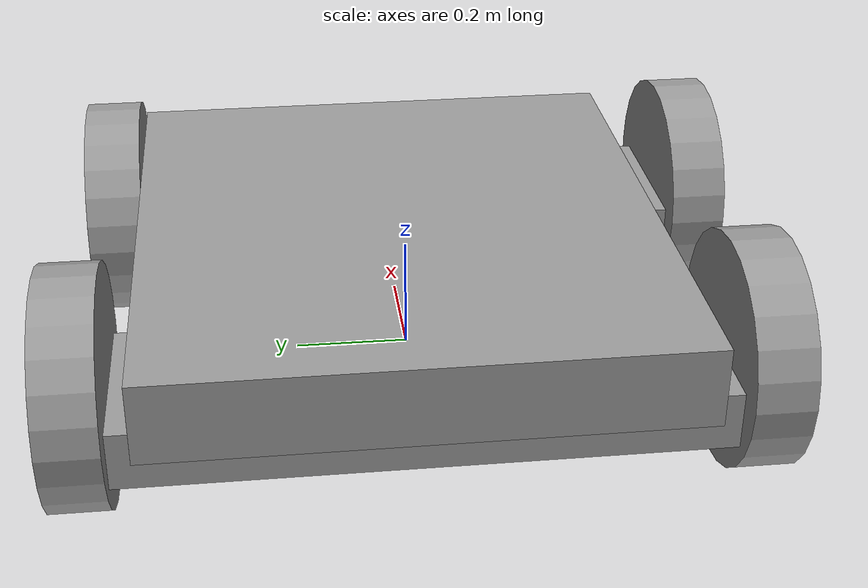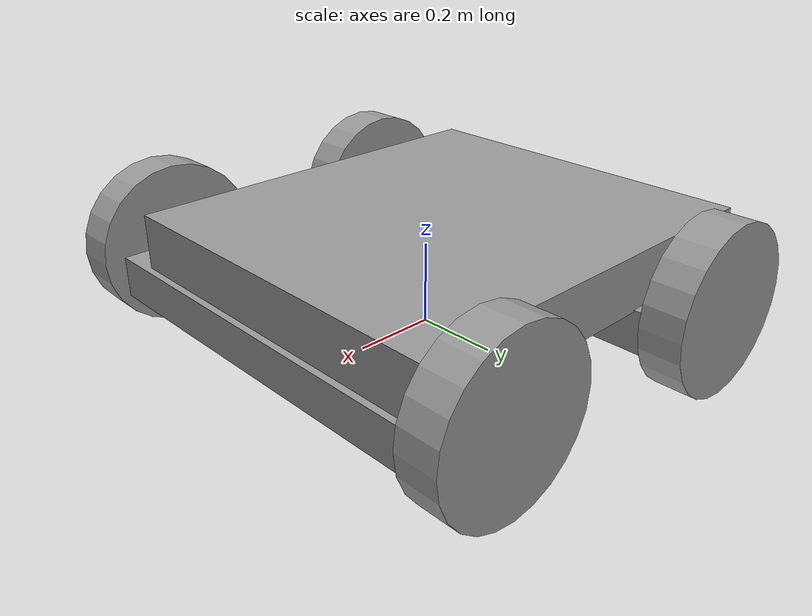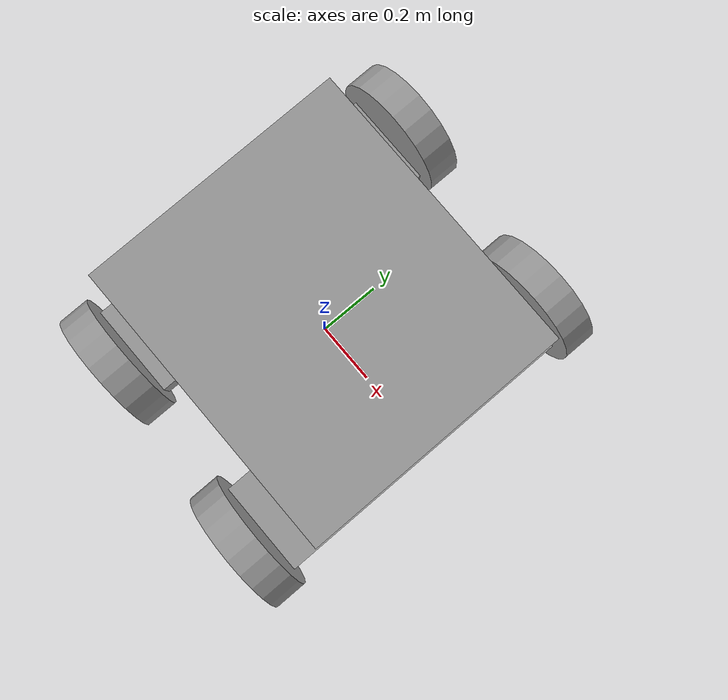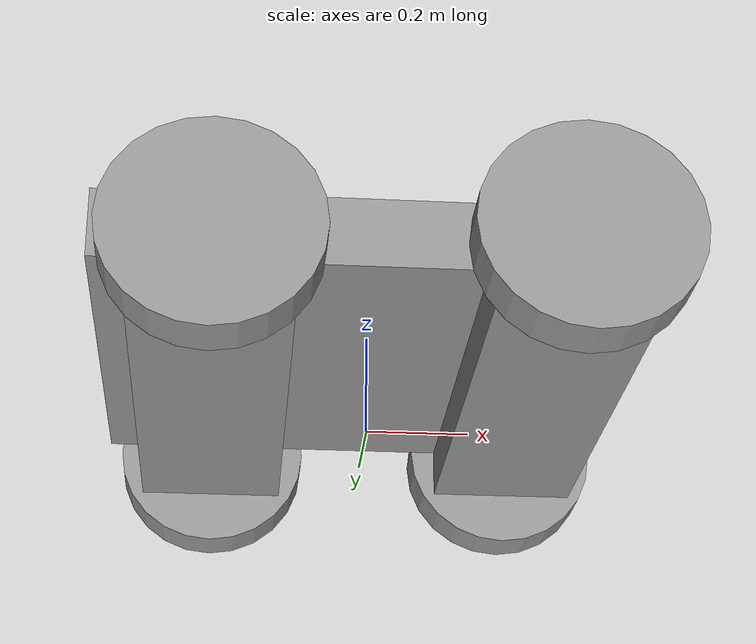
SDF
<?xml version='1.0'?>
<sdf version='1.6'>
  <model name='car2'>
    <link name='link_0'>
      <pose frame=''>-0.029646 0.017279 0.209143 0 -0 0</pose>
      <inertial>
        <mass>0.122646</mass>
        <inertia>
          <ixx>0.00845846</ixx>
          <ixy>0</ixy>
          <ixz>0</ixz>
          <iyy>0.0104105</iyy>
          <iyz>0</iyz>
          <izz>0.0184889</izz>
        </inertia>
        <pose frame=''>0 0 0 0 -0 0</pose>
      </inertial>
      <visual name='visual'>
        <pose frame=''>0 0 0 0 -0 0</pose>
        <geometry>
          <box>
            <size>1 0.899449 0.136358</size>
          </box>
        </geometry>
        <material>
          <lighting>1</lighting>
          <script>
            <uri>file://media/materials/scripts/gazebo.material</uri>
            <name>Gazebo/Grey</name>
          </script>
          <shader type='pixel'/>
          <ambient>0.3 0.3 0.3 1</ambient>
          <diffuse>0.7 0.7 0.7 1</diffuse>
          <specular>0.01 0.01 0.01 1</specular>
          <emissive>0 0 0 1</emissive>
        </material>
        <transparency>0</transparency>
        <cast_shadows>1</cast_shadows>
      </visual>
      <collision name='collision'>
        <laser_retro>0</laser_retro>
        <max_contacts>10</max_contacts>
        <pose frame=''>0 0 0 0 -0 0</pose>
        <geometry>
          <box>
            <size>1 0.899449 0.136358</size>
          </box>
        </geometry>
        <surface>
          <friction>
            <ode>
              <mu>1</mu>
              <mu2>1</mu2>
              <fdir1>0 0 0</fdir1>
              <slip1>0</slip1>
              <slip2>0</slip2>
            </ode>
            <torsional>
              <coefficient>1</coefficient>
              <patch_radius>0</patch_radius>
              <surface_radius>0</surface_radius>
              <use_patch_radius>1</use_patch_radius>
              <ode>
                <slip>0</slip>
              </ode>
            </torsional>
          </friction>
          <bounce>
            <restitution_coefficient>0</restitution_coefficient>
            <threshold>1e+06</threshold>
          </bounce>
          <contact>
            <collide_without_contact>0</collide_without_contact>
            <collide_without_contact_bitmask>1</collide_without_contact_bitmask>
            <collide_bitmask>1</collide_bitmask>
            <ode>
              <soft_cfm>0</soft_cfm>
              <soft_erp>0.2</soft_erp>
              <kp>1e+13</kp>
              <kd>1</kd>
              <max_vel>0.01</max_vel>
              <min_depth>0</min_depth>
            </ode>
            <bullet>
              <split_impulse>1</split_impulse>
              <split_impulse_penetration_threshold>-0.01</split_impulse_penetration_threshold>
              <soft_cfm>0</soft_cfm>
              <soft_erp>0.2</soft_erp>
              <kp>1e+13</kp>
              <kd>1</kd>
            </bullet>
          </contact>
        </surface>
      </collision>
    </link>
    <model name='robot'>
      <link name='link_0'>
        <pose frame=''>0 0 0.2 0 -0 0</pose>
        <inertial>
          <mass>1</mass>
          <inertia>
            <ixx>0.166667</ixx>
            <ixy>0</ixy>
            <ixz>0</ixz>
            <iyy>0.166667</iyy>
            <iyz>0</iyz>
            <izz>0.166667</izz>
          </inertia>
          <pose frame=''>0 0 0 0 -0 0</pose>
        </inertial>
        <gravity>1</gravity>
        <self_collide>0</self_collide>
        <kinematic>0</kinematic>
        <visual name='visual'>
          <pose frame=''>0 0 0 0 -0 0</pose>
          <geometry>
            <box>
              <size>0.3 1 0.1</size>
            </box>
          </geometry>
          <material>
            <lighting>1</lighting>
            <script>
              <uri>file://media/materials/scripts/gazebo.material</uri>
              <name>Gazebo/Grey</name>
            </script>
            <shader type='pixel'>
              <normal_map>__default__</normal_map>
            </shader>
            <ambient>0.3 0.3 0.3 1</ambient>
            <diffuse>0.7 0.7 0.7 1</diffuse>
            <specular>0.01 0.01 0.01 1</specular>
            <emissive>0 0 0 1</emissive>
          </material>
          <transparency>0</transparency>
          <cast_shadows>1</cast_shadows>
        </visual>
        <collision name='collision'>
          <laser_retro>0</laser_retro>
          <max_contacts>10</max_contacts>
          <pose frame=''>0 0 0 0 -0 0</pose>
          <geometry>
            <box>
              <size>0.3 1 0.1</size>
            </box>
          </geometry>
          <surface>
            <friction>
              <ode>
                <mu>1</mu>
                <mu2>1</mu2>
                <fdir1>0 0 0</fdir1>
                <slip1>0</slip1>
                <slip2>0</slip2>
              </ode>
              <torsional>
                <coefficient>1</coefficient>
                <patch_radius>0</patch_radius>
                <surface_radius>0</surface_radius>
                <use_patch_radius>1</use_patch_radius>
                <ode>
                  <slip>0</slip>
                </ode>
              </torsional>
            </friction>
            <bounce>
              <restitution_coefficient>0</restitution_coefficient>
              <threshold>1e+06</threshold>
            </bounce>
            <contact>
              <collide_without_contact>0</collide_without_contact>
              <collide_without_contact_bitmask>1</collide_without_contact_bitmask>
              <collide_bitmask>1</collide_bitmask>
              <ode>
                <soft_cfm>0</soft_cfm>
                <soft_erp>0.2</soft_erp>
                <kp>1e+13</kp>
                <kd>1</kd>
                <max_vel>0.01</max_vel>
                <min_depth>0</min_depth>
              </ode>
              <bullet>
                <split_impulse>1</split_impulse>
                <split_impulse_penetration_threshold>-0.01</split_impulse_penetration_threshold>
                <soft_cfm>0</soft_cfm>
                <soft_erp>0.2</soft_erp>
                <kp>1e+13</kp>
                <kd>1</kd>
              </bullet>
            </contact>
          </surface>
        </collision>
      </link>
      <link name='link_1'>
        <pose frame=''>0 -0.550019 0.244996 1.5707 -0 0</pose>
        <inertial>
          <mass>1</mass>
          <inertia>
            <ixx>0.145833</ixx>
            <ixy>0</ixy>
            <ixz>0</ixz>
            <iyy>0.145833</iyy>
            <iyz>0</iyz>
            <izz>0.125</izz>
          </inertia>
          <pose frame=''>0 0 0 0 -0 0</pose>
        </inertial>
        <gravity>1</gravity>
        <self_collide>0</self_collide>
        <kinematic>0</kinematic>
        <visual name='visual'>
          <pose frame=''>0 0 0 0 -0 0</pose>
          <geometry>
            <cylinder>
              <radius>0.2</radius>
              <length>0.1</length>
            </cylinder>
          </geometry>
          <material>
            <lighting>1</lighting>
            <script>
              <uri>file://media/materials/scripts/gazebo.material</uri>
              <name>Gazebo/Grey</name>
            </script>
            <shader type='pixel'>
              <normal_map>__default__</normal_map>
            </shader>
            <ambient>0.3 0.3 0.3 1</ambient>
            <diffuse>0.7 0.7 0.7 1</diffuse>
            <specular>0.01 0.01 0.01 1</specular>
            <emissive>0 0 0 1</emissive>
          </material>
          <transparency>0</transparency>
          <cast_shadows>1</cast_shadows>
        </visual>
        <collision name='collision'>
          <laser_retro>0</laser_retro>
          <max_contacts>10</max_contacts>
          <pose frame=''>0 0 0 0 -0 0</pose>
          <geometry>
            <cylinder>
              <radius>0.2</radius>
              <length>0.1</length>
            </cylinder>
          </geometry>
          <surface>
            <friction>
              <ode>
                <mu>1</mu>
                <mu2>1</mu2>
                <fdir1>0 0 0</fdir1>
                <slip1>0</slip1>
                <slip2>0</slip2>
              </ode>
              <torsional>
                <coefficient>1</coefficient>
                <patch_radius>0</patch_radius>
                <surface_radius>0</surface_radius>
                <use_patch_radius>1</use_patch_radius>
                <ode>
                  <slip>0</slip>
                </ode>
              </torsional>
            </friction>
            <bounce>
              <restitution_coefficient>0</restitution_coefficient>
              <threshold>1e+06</threshold>
            </bounce>
            <contact>
              <collide_without_contact>0</collide_without_contact>
              <collide_without_contact_bitmask>1</collide_without_contact_bitmask>
              <collide_bitmask>1</collide_bitmask>
              <ode>
                <soft_cfm>0</soft_cfm>
                <soft_erp>0.2</soft_erp>
                <kp>1e+13</kp>
                <kd>1</kd>
                <max_vel>0.01</max_vel>
                <min_depth>0</min_depth>
              </ode>
              <bullet>
                <split_impulse>1</split_impulse>
                <split_impulse_penetration_threshold>-0.01</split_impulse_penetration_threshold>
                <soft_cfm>0</soft_cfm>
                <soft_erp>0.2</soft_erp>
                <kp>1e+13</kp>
                <kd>1</kd>
              </bullet>
            </contact>
          </surface>
        </collision>
      </link>
      <link name='link_1_clone'>
        <pose frame=''>0 0.550019 0.245 1.5707 -0 0</pose>
        <inertial>
          <mass>1</mass>
          <inertia>
            <ixx>0.145833</ixx>
            <ixy>0</ixy>
            <ixz>0</ixz>
            <iyy>0.145833</iyy>
            <iyz>0</iyz>
            <izz>0.125</izz>
          </inertia>
          <pose frame=''>0 0 0 0 -0 0</pose>
        </inertial>
        <self_collide>0</self_collide>
        <kinematic>0</kinematic>
        <visual name='visual'>
          <pose frame=''>0 0 0 0 -0 0</pose>
          <geometry>
            <cylinder>
              <radius>0.2</radius>
              <length>0.1</length>
            </cylinder>
          </geometry>
          <material>
            <lighting>1</lighting>
            <script>
              <uri>file://media/materials/scripts/gazebo.material</uri>
              <name>Gazebo/Grey</name>
            </script>
            <shader type='pixel'>
              <normal_map>__default__</normal_map>
            </shader>
            <ambient>0.3 0.3 0.3 1</ambient>
            <diffuse>0.7 0.7 0.7 1</diffuse>
            <specular>0.01 0.01 0.01 1</specular>
            <emissive>0 0 0 1</emissive>
          </material>
          <transparency>0</transparency>
          <cast_shadows>1</cast_shadows>
        </visual>
        <collision name='collision'>
          <laser_retro>0</laser_retro>
          <max_contacts>10</max_contacts>
          <pose frame=''>0 0 0 0 -0 0</pose>
          <geometry>
            <cylinder>
              <radius>0.2</radius>
              <length>0.1</length>
            </cylinder>
          </geometry>
          <surface>
            <friction>
              <ode>
                <mu>1</mu>
                <mu2>1</mu2>
                <fdir1>0 0 0</fdir1>
                <slip1>0</slip1>
                <slip2>0</slip2>
              </ode>
              <torsional>
                <coefficient>1</coefficient>
                <patch_radius>0</patch_radius>
                <surface_radius>0</surface_radius>
                <use_patch_radius>1</use_patch_radius>
                <ode>
                  <slip>0</slip>
                </ode>
              </torsional>
            </friction>
            <bounce>
              <restitution_coefficient>0</restitution_coefficient>
              <threshold>1e+06</threshold>
            </bounce>
            <contact>
              <collide_without_contact>0</collide_without_contact>
              <collide_without_contact_bitmask>1</collide_without_contact_bitmask>
              <collide_bitmask>1</collide_bitmask>
              <ode>
                <soft_cfm>0</soft_cfm>
                <soft_erp>0.2</soft_erp>
                <kp>1e+13</kp>
                <kd>1</kd>
                <max_vel>0.01</max_vel>
                <min_depth>0</min_depth>
              </ode>
              <bullet>
                <split_impulse>1</split_impulse>
                <split_impulse_penetration_threshold>-0.01</split_impulse_penetration_threshold>
                <soft_cfm>0</soft_cfm>
                <soft_erp>0.2</soft_erp>
                <kp>1e+13</kp>
                <kd>1</kd>
              </bullet>
            </contact>
          </surface>
        </collision>
      </link>
      <joint name='link_0_JOINT_0' type='revolute'>
        <parent>link_0</parent>
        <child>link_1</child>
        <pose frame=''>0 0 0 0 -0 0</pose>
        <axis>
          <xyz>0 0 1</xyz>
          <use_parent_model_frame>0</use_parent_model_frame>
          <limit>
            <lower>-1.79769e+308</lower>
            <upper>1.79769e+308</upper>
            <effort>-1</effort>
            <velocity>-1</velocity>
          </limit>
          <dynamics>
            <spring_reference>0</spring_reference>
            <spring_stiffness>0</spring_stiffness>
            <damping>0</damping>
          </dynamics>
        </axis>
        <physics>
          <ode>
            <limit>
              <cfm>0</cfm>
              <erp>0.2</erp>
            </limit>
            <suspension>
              <cfm>0</cfm>
              <erp>0.2</erp>
            </suspension>
          </ode>
        </physics>
      </joint>
      <joint name='link_0_JOINT_1' type='revolute'>
        <parent>link_0</parent>
        <child>link_1_clone</child>
        <pose frame=''>0 0 0 0 -0 0</pose>
        <axis>
          <xyz>0 0 1</xyz>
          <use_parent_model_frame>0</use_parent_model_frame>
          <limit>
            <lower>-1.79769e+308</lower>
            <upper>1.79769e+308</upper>
            <effort>-1</effort>
            <velocity>-1</velocity>
          </limit>
          <dynamics>
            <spring_reference>0</spring_reference>
            <spring_stiffness>0</spring_stiffness>
            <damping>0</damping>
          </dynamics>
        </axis>
        <physics>
          <ode>
            <limit>
              <cfm>0</cfm>
              <erp>0.2</erp>
            </limit>
            <suspension>
              <cfm>0</cfm>
              <erp>0.2</erp>
            </suspension>
          </ode>
        </physics>
      </joint>
      <static>0</static>
      <allow_auto_disable>1</allow_auto_disable>
      <pose frame=''>-0.307377 0.011304 -0.104571 0 -0 0</pose>
    </model>
    <model name='robot_0'>
      <link name='link_0'>
        <pose frame=''>0 0 0.2 0 -0 0</pose>
        <inertial>
          <mass>1</mass>
          <inertia>
            <ixx>0.166667</ixx>
            <ixy>0</ixy>
            <ixz>0</ixz>
            <iyy>0.166667</iyy>
            <iyz>0</iyz>
            <izz>0.166667</izz>
          </inertia>
          <pose frame=''>0 0 0 0 -0 0</pose>
        </inertial>
        <gravity>1</gravity>
        <self_collide>0</self_collide>
        <kinematic>0</kinematic>
        <visual name='visual'>
          <pose frame=''>0 0 0 0 -0 0</pose>
          <geometry>
            <box>
              <size>0.3 1 0.1</size>
            </box>
          </geometry>
          <material>
            <lighting>1</lighting>
            <script>
              <uri>file://media/materials/scripts/gazebo.material</uri>
              <name>Gazebo/Grey</name>
            </script>
            <shader type='pixel'>
              <normal_map>__default__</normal_map>
            </shader>
            <ambient>0.3 0.3 0.3 1</ambient>
            <diffuse>0.7 0.7 0.7 1</diffuse>
            <specular>0.01 0.01 0.01 1</specular>
            <emissive>0 0 0 1</emissive>
          </material>
          <transparency>0</transparency>
          <cast_shadows>1</cast_shadows>
        </visual>
        <collision name='collision'>
          <laser_retro>0</laser_retro>
          <max_contacts>10</max_contacts>
          <pose frame=''>0 0 0 0 -0 0</pose>
          <geometry>
            <box>
              <size>0.3 1 0.1</size>
            </box>
          </geometry>
          <surface>
            <friction>
              <ode>
                <mu>1</mu>
                <mu2>1</mu2>
                <fdir1>0 0 0</fdir1>
                <slip1>0</slip1>
                <slip2>0</slip2>
              </ode>
              <torsional>
                <coefficient>1</coefficient>
                <patch_radius>0</patch_radius>
                <surface_radius>0</surface_radius>
                <use_patch_radius>1</use_patch_radius>
                <ode>
                  <slip>0</slip>
                </ode>
              </torsional>
            </friction>
            <bounce>
              <restitution_coefficient>0</restitution_coefficient>
              <threshold>1e+06</threshold>
            </bounce>
            <contact>
              <collide_without_contact>0</collide_without_contact>
              <collide_without_contact_bitmask>1</collide_without_contact_bitmask>
              <collide_bitmask>1</collide_bitmask>
              <ode>
                <soft_cfm>0</soft_cfm>
                <soft_erp>0.2</soft_erp>
                <kp>1e+13</kp>
                <kd>1</kd>
                <max_vel>0.01</max_vel>
                <min_depth>0</min_depth>
              </ode>
              <bullet>
                <split_impulse>1</split_impulse>
                <split_impulse_penetration_threshold>-0.01</split_impulse_penetration_threshold>
                <soft_cfm>0</soft_cfm>
                <soft_erp>0.2</soft_erp>
                <kp>1e+13</kp>
                <kd>1</kd>
              </bullet>
            </contact>
          </surface>
        </collision>
      </link>
      <link name='link_1'>
        <pose frame=''>0 -0.550019 0.244996 1.5707 -0 0</pose>
        <inertial>
          <mass>1</mass>
          <inertia>
            <ixx>0.145833</ixx>
            <ixy>0</ixy>
            <ixz>0</ixz>
            <iyy>0.145833</iyy>
            <iyz>0</iyz>
            <izz>0.125</izz>
          </inertia>
          <pose frame=''>0 0 0 0 -0 0</pose>
        </inertial>
        <gravity>1</gravity>
        <self_collide>0</self_collide>
        <kinematic>0</kinematic>
        <visual name='visual'>
          <pose frame=''>0 0 0 0 -0 0</pose>
          <geometry>
            <cylinder>
              <radius>0.2</radius>
              <length>0.1</length>
            </cylinder>
          </geometry>
          <material>
            <lighting>1</lighting>
            <script>
              <uri>file://media/materials/scripts/gazebo.material</uri>
              <name>Gazebo/Grey</name>
            </script>
            <shader type='pixel'>
              <normal_map>__default__</normal_map>
            </shader>
            <ambient>0.3 0.3 0.3 1</ambient>
            <diffuse>0.7 0.7 0.7 1</diffuse>
            <specular>0.01 0.01 0.01 1</specular>
            <emissive>0 0 0 1</emissive>
          </material>
          <transparency>0</transparency>
          <cast_shadows>1</cast_shadows>
        </visual>
        <collision name='collision'>
          <laser_retro>0</laser_retro>
          <max_contacts>10</max_contacts>
          <pose frame=''>0 0 0 0 -0 0</pose>
          <geometry>
            <cylinder>
              <radius>0.2</radius>
              <length>0.1</length>
            </cylinder>
          </geometry>
          <surface>
            <friction>
              <ode>
                <mu>1</mu>
                <mu2>1</mu2>
                <fdir1>0 0 0</fdir1>
                <slip1>0</slip1>
                <slip2>0</slip2>
              </ode>
              <torsional>
                <coefficient>1</coefficient>
                <patch_radius>0</patch_radius>
                <surface_radius>0</surface_radius>
                <use_patch_radius>1</use_patch_radius>
                <ode>
                  <slip>0</slip>
                </ode>
              </torsional>
            </friction>
            <bounce>
              <restitution_coefficient>0</restitution_coefficient>
              <threshold>1e+06</threshold>
            </bounce>
            <contact>
              <collide_without_contact>0</collide_without_contact>
              <collide_without_contact_bitmask>1</collide_without_contact_bitmask>
              <collide_bitmask>1</collide_bitmask>
              <ode>
                <soft_cfm>0</soft_cfm>
                <soft_erp>0.2</soft_erp>
                <kp>1e+13</kp>
                <kd>1</kd>
                <max_vel>0.01</max_vel>
                <min_depth>0</min_depth>
              </ode>
              <bullet>
                <split_impulse>1</split_impulse>
                <split_impulse_penetration_threshold>-0.01</split_impulse_penetration_threshold>
                <soft_cfm>0</soft_cfm>
                <soft_erp>0.2</soft_erp>
                <kp>1e+13</kp>
                <kd>1</kd>
              </bullet>
            </contact>
          </surface>
        </collision>
      </link>
      <link name='link_1_clone'>
        <pose frame=''>0 0.550019 0.245 1.5707 -0 0</pose>
        <inertial>
          <mass>1</mass>
          <inertia>
            <ixx>0.145833</ixx>
            <ixy>0</ixy>
            <ixz>0</ixz>
            <iyy>0.145833</iyy>
            <iyz>0</iyz>
            <izz>0.125</izz>
          </inertia>
          <pose frame=''>0 0 0 0 -0 0</pose>
        </inertial>
        <self_collide>0</self_collide>
        <kinematic>0</kinematic>
        <visual name='visual'>
          <pose frame=''>0 0 0 0 -0 0</pose>
          <geometry>
            <cylinder>
              <radius>0.2</radius>
              <length>0.1</length>
            </cylinder>
          </geometry>
          <material>
            <lighting>1</lighting>
            <script>
              <uri>file://media/materials/scripts/gazebo.material</uri>
              <name>Gazebo/Grey</name>
            </script>
            <shader type='pixel'>
              <normal_map>__default__</normal_map>
            </shader>
            <ambient>0.3 0.3 0.3 1</ambient>
            <diffuse>0.7 0.7 0.7 1</diffuse>
            <specular>0.01 0.01 0.01 1</specular>
            <emissive>0 0 0 1</emissive>
          </material>
          <transparency>0</transparency>
          <cast_shadows>1</cast_shadows>
        </visual>
        <collision name='collision'>
          <laser_retro>0</laser_retro>
          <max_contacts>10</max_contacts>
          <pose frame=''>0 0 0 0 -0 0</pose>
          <geometry>
            <cylinder>
              <radius>0.2</radius>
              <length>0.1</length>
            </cylinder>
          </geometry>
          <surface>
            <friction>
              <ode>
                <mu>1</mu>
                <mu2>1</mu2>
                <fdir1>0 0 0</fdir1>
                <slip1>0</slip1>
                <slip2>0</slip2>
              </ode>
              <torsional>
                <coefficient>1</coefficient>
                <patch_radius>0</patch_radius>
                <surface_radius>0</surface_radius>
                <use_patch_radius>1</use_patch_radius>
                <ode>
                  <slip>0</slip>
                </ode>
              </torsional>
            </friction>
            <bounce>
              <restitution_coefficient>0</restitution_coefficient>
              <threshold>1e+06</threshold>
            </bounce>
            <contact>
              <collide_without_contact>0</collide_without_contact>
              <collide_without_contact_bitmask>1</collide_without_contact_bitmask>
              <collide_bitmask>1</collide_bitmask>
              <ode>
                <soft_cfm>0</soft_cfm>
                <soft_erp>0.2</soft_erp>
                <kp>1e+13</kp>
                <kd>1</kd>
                <max_vel>0.01</max_vel>
                <min_depth>0</min_depth>
              </ode>
              <bullet>
                <split_impulse>1</split_impulse>
                <split_impulse_penetration_threshold>-0.01</split_impulse_penetration_threshold>
                <soft_cfm>0</soft_cfm>
                <soft_erp>0.2</soft_erp>
                <kp>1e+13</kp>
                <kd>1</kd>
              </bullet>
            </contact>
          </surface>
        </collision>
      </link>
      <joint name='link_0_JOINT_0' type='revolute'>
        <parent>link_0</parent>
        <child>link_1</child>
        <pose frame=''>0 0 0 0 -0 0</pose>
        <axis>
          <xyz>0 0 1</xyz>
          <use_parent_model_frame>0</use_parent_model_frame>
          <limit>
            <lower>-1.79769e+308</lower>
            <upper>1.79769e+308</upper>
            <effort>-1</effort>
            <velocity>-1</velocity>
          </limit>
          <dynamics>
            <spring_reference>0</spring_reference>
            <spring_stiffness>0</spring_stiffness>
            <damping>0</damping>
          </dynamics>
        </axis>
        <physics>
          <ode>
            <limit>
              <cfm>0</cfm>
              <erp>0.2</erp>
            </limit>
            <suspension>
              <cfm>0</cfm>
              <erp>0.2</erp>
            </suspension>
          </ode>
        </physics>
      </joint>
      <joint name='link_0_JOINT_1' type='revolute'>
        <parent>link_0</parent>
        <child>link_1_clone</child>
        <pose frame=''>0 0 0 0 -0 0</pose>
        <axis>
          <xyz>0 0 1</xyz>
          <use_parent_model_frame>0</use_parent_model_frame>
          <limit>
            <lower>-1.79769e+308</lower>
            <upper>1.79769e+308</upper>
            <effort>-1</effort>
            <velocity>-1</velocity>
          </limit>
          <dynamics>
            <spring_reference>0</spring_reference>
            <spring_stiffness>0</spring_stiffness>
            <damping>0</damping>
          </dynamics>
        </axis>
        <physics>
          <ode>
            <limit>
              <cfm>0</cfm>
              <erp>0.2</erp>
            </limit>
            <suspension>
              <cfm>0</cfm>
              <erp>0.2</erp>
            </suspension>
          </ode>
        </physics>
      </joint>
      <static>0</static>
      <allow_auto_disable>1</allow_auto_disable>
      <pose frame=''>0.337023 -0.028583 -0.104571 0 -0 0</pose>
    </model>
    <joint name='link_0_JOINT_0' type='fixed'>
      <parent>link_0</parent>
      <child>robot_0::link_0</child>
      <pose frame=''>0 0 0 0 -0 0</pose>
      <physics>
        <ode>
          <limit>
            <cfm>0</cfm>
            <erp>0.2</erp>
          </limit>
          <suspension>
            <cfm>0</cfm>
            <erp>0.2</erp>
          </suspension>
        </ode>
      </physics>
    </joint>
    <joint name='link_0_JOINT_1' type='revolute'>
      <parent>link_0</parent>
      <child>robot::link_1_clone</child>
      <pose frame=''>0 0 0 0 -0 0</pose>
      <axis>
        <xyz>1 0 0</xyz>
        <use_parent_model_frame>0</use_parent_model_frame>
        <limit>
          <lower>-1.79769e+308</lower>
          <upper>1.79769e+308</upper>
          <effort>-1</effort>
          <velocity>-1</velocity>
        </limit>
        <dynamics>
          <spring_reference>0</spring_reference>
          <spring_stiffness>0</spring_stiffness>
          <damping>0</damping>
        </dynamics>
      </axis>
      <physics>
        <ode>
          <limit>
            <cfm>0</cfm>
            <erp>0.2</erp>
          </limit>
          <suspension>
            <cfm>0</cfm>
            <erp>0.2</erp>
          </suspension>
        </ode>
      </physics>
    </joint>
    <static>0</static>
    <allow_auto_disable>1</allow_auto_disable>
  </model>
</sdf>
